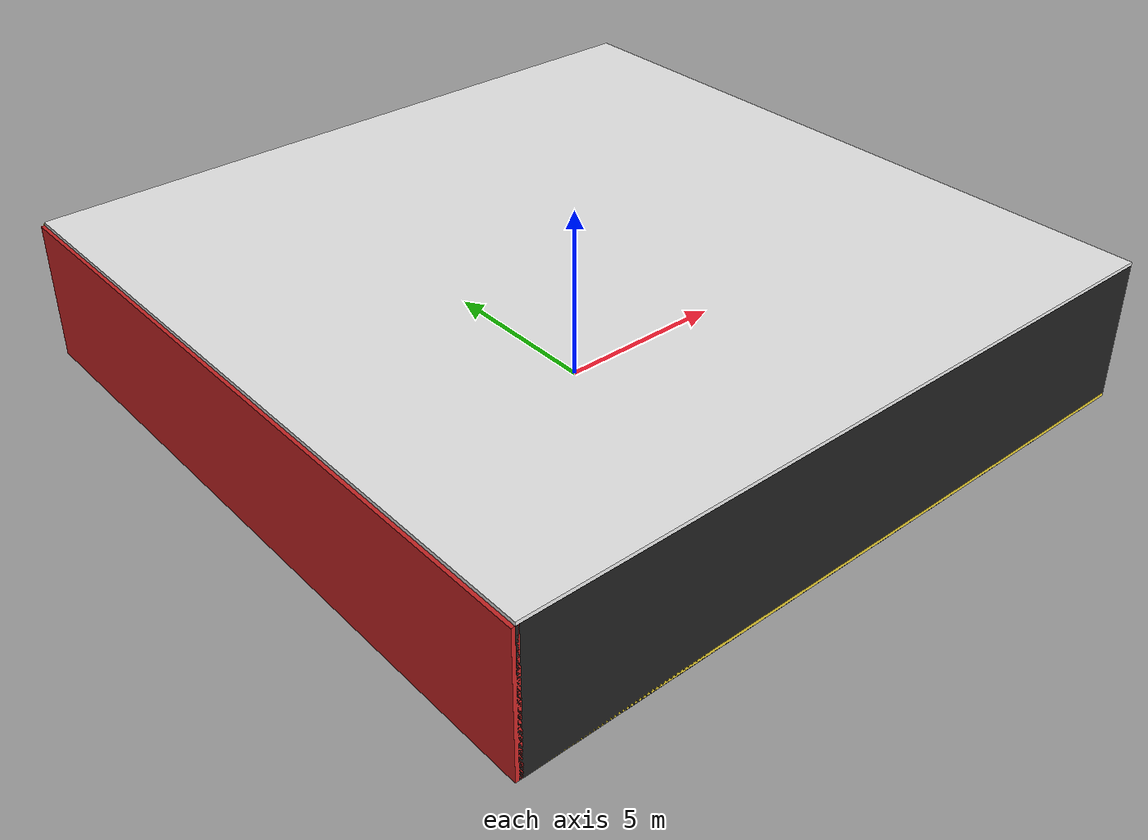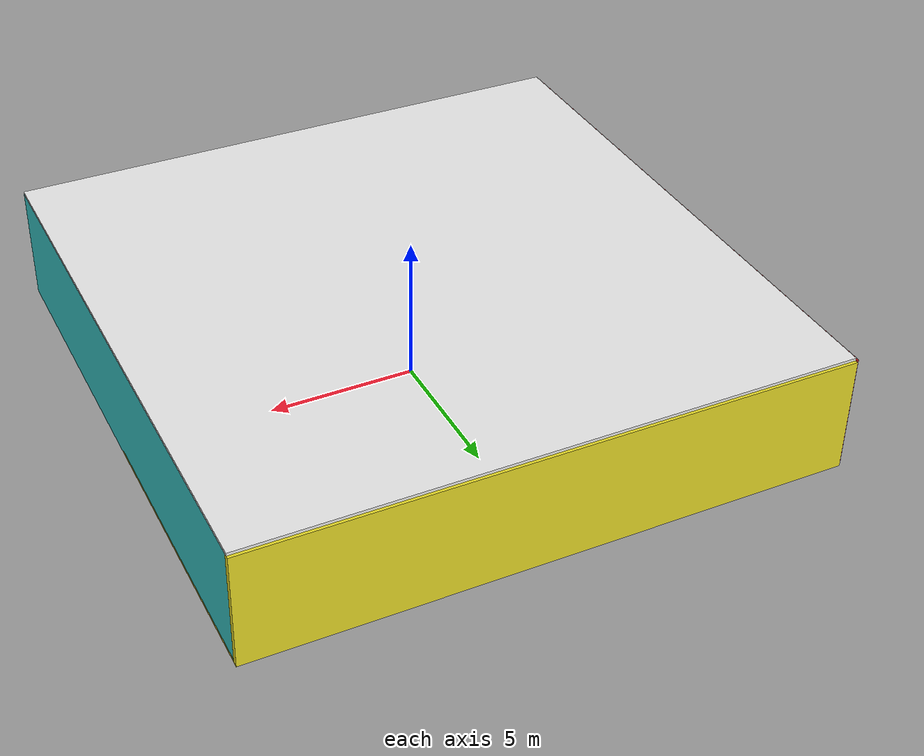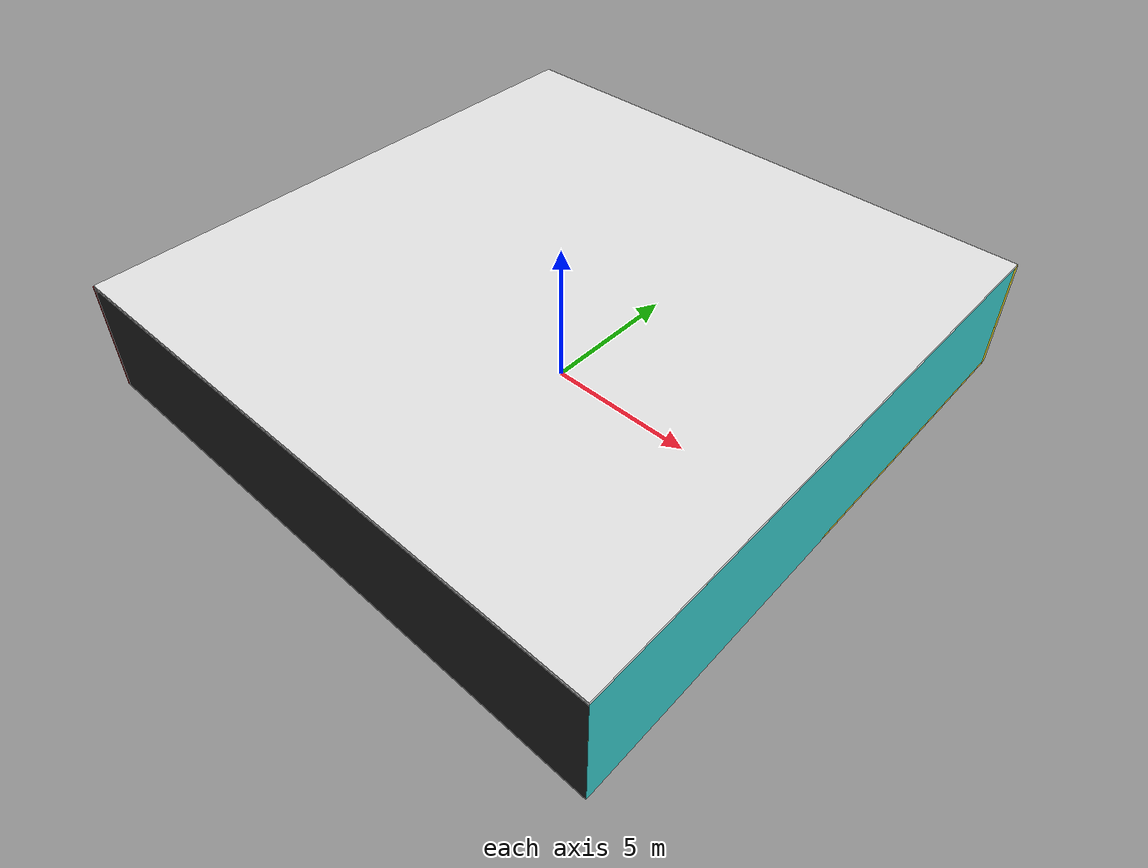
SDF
<sdf version="1.4">
 <world name="default">
  <physics type="ode">
   <max_step_size>0.001</max_step_size>
   <real_time_factor>1</real_time_factor>
   <real_time_update_rate>1000</real_time_update_rate>
   <gravity>0 0 -9.8</gravity>
  </physics>
  <scene><ambient>0.4 0.4 0.4 1</ambient><background>0.7 0.7 0.7 1</background><shadows>1</shadows></scene>
  <model name="Surrounding">
   <static>1</static>
   <link name="Ceiling">
    <collision name="Ceiling_Collision"><geometry><box><size>20 20 0.1</size></box></geometry></collision>
    <visual name="Ceiling_Visual">
     <geometry><box><size>20 20 0.1</size></box></geometry>
     <material>
      <script><uri>file://media/materials/scripts/gazebo.material</uri><name>Gazebo/White</name></script>
     </material>
    </visual>
    <pose>0 0 4.05 0 0 0</pose>
   </link>
   <link name="Wall_South">
    <collision name="Wall_South_Collision">
     <geometry><box><size>20 0 4</size></box></geometry>
     <pose>0 0 2 0 -0 0</pose>
    </collision>
    <visual name="Wall_South_Visual">
     <pose>0 0 2 0 -0 0</pose>
     <geometry><box><size>20 0 4</size></box></geometry>
     <material>
      <script><uri>file://media/materials/scripts/gazebo.material</uri><name>Gazebo/FlatBlack</name></script>
     </material>
    </visual>
    <velocity_decay><linear>0</linear><angular>0</angular></velocity_decay>
    <pose>0 -10 0 0 -0 0</pose>
   </link>
   <link name="Wall_East">
    <collision name="Wall_21_Collision">
     <geometry><box><size>20 0 4</size></box></geometry>
     <pose>0 0 2 0 -0 0</pose>
    </collision>
    <visual name="Wall_21_Visual">
     <pose>0 0 2 0 -0 0</pose>
     <geometry><box><size>20 0 4</size></box></geometry>
     <material>
      <script>
       <uri>file://media/materials/scripts/gazebo.material</uri>
       <name>Gazebo/TurquoiseGlowOutline</name>
      </script>
     </material>
    </visual>
    <velocity_decay><linear>0</linear><angular>0</angular></velocity_decay>
    <pose>10 0 0 0 -0 1.5708</pose>
   </link>
   <link name="Wall_North">
    <collision name="Wall_22_Collision">
     <geometry><box><size>20 0.2 4</size></box></geometry>
     <pose>0 0 2 0 -0 0</pose>
    </collision>
    <visual name="Wall_22_Visual">
     <pose>0 0 2 0 -0 0</pose>
     <geometry><box><size>20 0.2 4</size></box></geometry>
     <material>
      <script><uri>file://media/materials/scripts/gazebo.material</uri><name>Gazebo/YellowGlow</name></script>
     </material>
    </visual>
    <velocity_decay><linear>0</linear><angular>0</angular></velocity_decay>
    <pose>0 10 0 0 -0 0</pose>
   </link>
   <link name="Wall_West">
    <collision name="Wall_23_Collision">
     <geometry><box><size>20 0.2 4</size></box></geometry>
     <pose>0 0 2 0 -0 0</pose>
    </collision>
    <visual name="Wall_23_Visual">
     <pose>0 0 2 0 -0 0</pose>
     <geometry><box><size>20 0.2 4</size></box></geometry>
     <material>
      <script><uri>file://media/materials/scripts/gazebo.material</uri><name>Gazebo/RedGlow</name></script>
     </material>
    </visual>
    <velocity_decay><linear>0</linear><angular>0</angular></velocity_decay>
    <pose>-10 0 0 0 0 -1.5708</pose>
   </link>
   <link name="Ground_link">
    <collision name="collision">
     <pose>0 0 .05 0 -0 0</pose>
     <geometry><box><size>20 20 0.1</size></box></geometry>
    </collision>
    <visual name="visual">
     <pose>0 0 .05 0 -0 0</pose>
     <geometry><box><size>20 20 0.1</size></box></geometry>
     <material>
      <script><uri>file://media/materials/scripts/gazebo.material</uri><name>Gazebo/ZincYellow</name></script>
     </material>
    </visual>
   </link>
   <static>1</static>
  </model>
  <spherical_coordinates>
   <surface_model>EARTH_WGS84</surface_model>
   <latitude_deg>0</latitude_deg>
   <longitude_deg>0</longitude_deg>
   <elevation>0</elevation>
   <heading_deg>0</heading_deg>
  </spherical_coordinates>
  <light name="lightball_0" type="diffuse">
   <diffuse>0.8 0.8 0.8 1</diffuse>
   <specular>0.2 0.2 0.2 1</specular>
   <attenuation>
    <range>100</range>
    <constant>0.7</constant>
    <linear>0.01</linear>
    <quadratic>0.001</quadratic>
   </attenuation>
   <direction>-0.5 0.1 -0.9</direction>
   <pose>4.49807056483 0.0712303950816 1.88487863137 0 0 0</pose>
  </light>
  <light name="lightball_1" type="diffuse">
   <diffuse>0.8 0.8 0.8 1</diffuse>
   <specular>0.2 0.2 0.2 1</specular>
   <attenuation>
    <range>100</range>
    <constant>0.7</constant>
    <linear>0.01</linear>
    <quadratic>0.001</quadratic>
   </attenuation>
   <direction>-0.5 0.1 -0.9</direction>
   <pose>3.9776111495 -2.05365608196 1.7578626716 0 0 0</pose>
  </light>
  <light name="lightball_2" type="diffuse">
   <diffuse>0.8 0.8 0.8 1</diffuse>
   <specular>0.2 0.2 0.2 1</specular>
   <attenuation>
    <range>100</range>
    <constant>0.7</constant>
    <linear>0.01</linear>
    <quadratic>0.001</quadratic>
   </attenuation>
   <direction>-0.5 0.1 -0.9</direction>
   <pose>5.276242772 -2.71075727546 3.76751410948 0 0 0</pose>
  </light>
  <light name="lightball_3" type="diffuse">
   <diffuse>0.8 0.8 0.8 1</diffuse>
   <specular>0.2 0.2 0.2 1</specular>
   <attenuation>
    <range>100</range>
    <constant>0.7</constant>
    <linear>0.01</linear>
    <quadratic>0.001</quadratic>
   </attenuation>
   <direction>-0.5 0.1 -0.9</direction>
   <pose>-5.89469357813 7.13109365602 3.49955959138 0 0 0</pose>
  </light>
  <light name="lightball_4" type="diffuse">
   <diffuse>0.8 0.8 0.8 1</diffuse>
   <specular>0.2 0.2 0.2 1</specular>
   <attenuation>
    <range>100</range>
    <constant>0.7</constant>
    <linear>0.01</linear>
    <quadratic>0.001</quadratic>
   </attenuation>
   <direction>-0.5 0.1 -0.9</direction>
   <pose>-0.237813559318 -9.13213407221 0.927517507428 0 0 0</pose>
  </light>
  <light name="lightball_5" type="diffuse">
   <diffuse>0.8 0.8 0.8 1</diffuse>
   <specular>0.2 0.2 0.2 1</specular>
   <attenuation>
    <range>100</range>
    <constant>0.7</constant>
    <linear>0.01</linear>
    <quadratic>0.001</quadratic>
   </attenuation>
   <direction>-0.5 0.1 -0.9</direction>
   <pose>0.618139636598 -2.6122909379 1.11694311652 0 0 0</pose>
  </light>
  <light name="lightball_6" type="diffuse">
   <diffuse>0.8 0.8 0.8 1</diffuse>
   <specular>0.2 0.2 0.2 1</specular>
   <attenuation>
    <range>100</range>
    <constant>0.7</constant>
    <linear>0.01</linear>
    <quadratic>0.001</quadratic>
   </attenuation>
   <direction>-0.5 0.1 -0.9</direction>
   <pose>-2.17569380815 -0.238397207709 2.77378152938 0 0 0</pose>
  </light>
  <light name="lightball_7" type="diffuse">
   <diffuse>0.8 0.8 0.8 1</diffuse>
   <specular>0.2 0.2 0.2 1</specular>
   <attenuation>
    <range>100</range>
    <constant>0.7</constant>
    <linear>0.01</linear>
    <quadratic>0.001</quadratic>
   </attenuation>
   <direction>-0.5 0.1 -0.9</direction>
   <pose>5.11809745221 -4.93003934467 1.50743106208 0 0 0</pose>
  </light>
  <light name="lightball_8" type="diffuse">
   <diffuse>0.8 0.8 0.8 1</diffuse>
   <specular>0.2 0.2 0.2 1</specular>
   <attenuation>
    <range>100</range>
    <constant>0.7</constant>
    <linear>0.01</linear>
    <quadratic>0.001</quadratic>
   </attenuation>
   <direction>-0.5 0.1 -0.9</direction>
   <pose>-5.35792287567 0.503093882951 3.30206506219 0 0 0</pose>
  </light>
  <light name="lightball_9" type="diffuse">
   <diffuse>0.8 0.8 0.8 1</diffuse>
   <specular>0.2 0.2 0.2 1</specular>
   <attenuation>
    <range>100</range>
    <constant>0.7</constant>
    <linear>0.01</linear>
    <quadratic>0.001</quadratic>
   </attenuation>
   <direction>-0.5 0.1 -0.9</direction>
   <pose>-4.87407655649 9.06611474538 1.21034548328 0 0 0</pose>
  </light>
  <include><uri>model://cabinet</uri><pose>-6.47374409066 -8.50641506659 0 0 0 2.32131577264</pose></include>
  <include><uri>model://table</uri><pose>-8.64085560051 -4.92155519625 0 0 0 0.708705514963</pose></include>
  <include>
   <uri>model://robocup_3Dsim_goal</uri>
   <pose>-8.07904794279 -2.15653318897 0 0 0 2.76059202867</pose>
  </include>
  <include>
   <uri>model://construction_cone</uri>
   <pose>-5.57252817646 -2.17591257025 0 0 0 1.25589094489</pose>
  </include>
  <include>
   <uri>model://construction_cone</uri>
   <pose>-5.44096926731 1.18005241115 0 0 0 1.02994945591</pose>
  </include>
  <include><uri>model://table</uri><pose>-1.89447306183 -3.4089755955 0 0 0 0.980776186446</pose></include>
  <include>
   <uri>model://robocup_3Dsim_goal</uri>
   <pose>1.3865380883 6.91967835708 0 0 0 0.890766286343</pose>
  </include>
  <include>
   <uri>model://robocup_3Dsim_goal</uri>
   <pose>3.82662252359 -5.14568323777 0 0 0 2.90317049193</pose>
  </include>
  <include><uri>model://cabinet</uri><pose>4.80821623718 4.63242681768 0 0 0 0.379401663795</pose></include>
  <include><uri>model://cabinet</uri><pose>8.26604041248 8.20432530475 0 0 0 0.439045129132</pose></include>
 </world>
</sdf>

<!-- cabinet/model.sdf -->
<sdf version="1.5">
  <model name="cabinet">
    <static>true</static>
    <link name="cabinet_bottom_plate">
      <inertial>
        <pose>0 0 -1 0 0 0</pose>
        <inertia>
          <ixx>2.050000</ixx>
          <ixy>0</ixy>
          <ixz>0</ixz>
          <iyy>2.050000</iyy>
          <iyz>0</iyz>
          <izz>2.050000</izz>
        </inertia>
        <mass>25.000000</mass>
      </inertial>
      <collision name="cabinet_bottom_plate_geom">
        <pose>0 0 0.010000 0 0 0</pose>
        <geometry>
          <box>
            <size>0.450000 0.450000 0.020000</size>
          </box>
        </geometry>
      </collision>
      <visual name="cabinet_bottom_plate_geom_visual">
        <pose>0 0 0.010000 0 0 0</pose>
        <geometry>
          <box>
            <size>0.450000 0.450000 0.020000</size>
          </box>
        </geometry>
        <material>
          <script>
            <uri>model://media/materials/scripts/gazebo.material</uri>
            <name>Gazebo/Wood</name>
          </script>
        </material>
      </visual>
      <collision name="cabinet_bottom_plate_geom_cabinet_back_plate">
        <pose>0.235000 0 0.510000 0 0 0</pose>
        <geometry>
          <box>
            <size>0.020000 0.450000 1.020000</size>
          </box>
        </geometry>
      </collision>
      <visual name="cabinet_bottom_plate_geom_cabinet_back_plate_visual">
        <pose>0.235000 0 0.510000 0 0 0</pose>
        <geometry>
          <box>
            <size>0.020000 0.450000 1.020000</size>
          </box>
        </geometry>
        <material>
          <script>
            <uri>model://media/materials/scripts/gazebo.material</uri>
            <name>Gazebo/Wood</name>
          </script>
        </material>
      </visual>
      <collision name="cabinet_bottom_plate_geom_cabinet_left_plate">
        <pose>0 0.235000 0.510000 0 0 0</pose>
        <geometry>
          <box>
            <size>0.450000 0.020000 1.020000</size>
          </box>
        </geometry>
      </collision>
      <visual name="cabinet_bottom_plate_geom_cabinet_left_plate_visual">
        <pose>0 0.235000 0.510000 0 0 0</pose>
        <geometry>
          <box>
            <size>0.450000 0.020000 1.020000</size>
          </box>
        </geometry>
        <material>
          <script>
            <uri>model://media/materials/scripts/gazebo.material</uri>
            <name>Gazebo/Wood</name>
          </script>
        </material>
      </visual>
      <collision name="cabinet_bottom_plate_geom_cabinet_middle_plate">
        <pose>0 0 0.510000 0 0 0</pose>
        <geometry>
          <box>
            <size>0.450000 0.450000 0.020000</size>
          </box>
        </geometry>
      </collision>
      <visual name="cabinet_bottom_plate_geom_cabinet_middle_plate_visual">
        <pose>0 0 0.510000 0 0 0</pose>
        <geometry>
          <box>
            <size>0.450000 0.450000 0.020000</size>
          </box>
        </geometry>
        <material>
          <script>
            <uri>model://media/materials/scripts/gazebo.material</uri>
            <name>Gazebo/Wood</name>
          </script>
        </material>
      </visual>
      <collision name="cabinet_bottom_plate_geom_cabinet_right_plate">
        <pose>0 -0.235000 0.510000 0 0 0</pose>
        <geometry>
          <box>
            <size>0.450000 0.020000 1.020000</size>
          </box>
        </geometry>
      </collision>
      <visual name="cabinet_bottom_plate_geom_cabinet_right_plate_visual">
        <pose>0 -0.235000 0.510000 0 0 0</pose>
        <geometry>
          <box>
            <size>0.450000 0.020000 1.020000</size>
          </box>
        </geometry>
        <material>
          <script>
            <uri>model://media/materials/scripts/gazebo.material</uri>
            <name>Gazebo/Wood</name>
          </script>
        </material>
      </visual>
      <collision name="cabinet_bottom_plate_geom_cabinet_top_plate">
        <pose>0 0 1.010000 0 0 0</pose>
        <geometry>
          <box>
            <size>0.450000 0.450000 0.020000</size>
          </box>
        </geometry>
      </collision>
      <visual name="cabinet_bottom_plate_geom_cabinet_top_plate_visual">
        <pose>0 0 1.010000 0 0 0</pose>
        <geometry>
          <box>
            <size>0.450000 0.450000 0.020000</size>
          </box>
        </geometry>
        <material>
          <script>
            <uri>model://media/materials/scripts/gazebo.material</uri>
            <name>Gazebo/Wood</name>
          </script>
        </material>
      </visual>
    </link>
  </model>
</sdf>

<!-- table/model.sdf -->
<sdf version="1.5">
  <model name="table">
    <static>true</static>
    <link name="link">
      <collision name="surface">
        <pose>0 0 1.0 0 0 0</pose>
        <geometry>
          <box>
            <size>1.5 0.8 0.03</size>
          </box>
        </geometry>
        <surface>
          <friction>
            <ode>
              <mu>0.6</mu>
              <mu2>0.6</mu2>
            </ode>
          </friction>
        </surface>
      </collision>
      <visual name="visual1">
        <pose>0 0 1.0 0 0 0</pose>
        <geometry>
          <box>
            <size>1.5 0.8 0.03</size>
          </box>
        </geometry>
        <material>
          <script>
            <uri>model://media/materials/scripts/gazebo.material</uri>
            <name>Gazebo/Wood</name>
          </script>
        </material>
      </visual>
      <collision name="front_left_leg">
        <pose>0.68 0.38 0.5 0 0 0</pose>
        <geometry>
          <cylinder>
            <radius>0.02</radius>
            <length>1.0</length>
          </cylinder>
        </geometry>
      </collision>
      <visual name="front_left_leg">
        <pose>0.68 0.38 0.5 0 0 0</pose>
        <geometry>
          <cylinder>
            <radius>0.02</radius>
            <length>1.0</length>
          </cylinder>
        </geometry>
        <material>
          <script>
            <uri>model://media/materials/scripts/gazebo.material</uri>
            <name>Gazebo/Grey</name>
          </script>
        </material>
      </visual>
      <collision name="front_right_leg">
        <pose>0.68 -0.38 0.5 0 0 0</pose>
        <geometry>
          <cylinder>
            <radius>0.02</radius>
            <length>1.0</length>
          </cylinder>
        </geometry>
      </collision>
      <visual name="front_right_leg">
        <pose>0.68 -0.38 0.5 0 0 0</pose>
        <geometry>
          <cylinder>
            <radius>0.02</radius>
            <length>1.0</length>
          </cylinder>
        </geometry>
        <material>
          <script>
            <uri>model://media/materials/scripts/gazebo.material</uri>
            <name>Gazebo/Grey</name>
          </script>
        </material>
      </visual>
      <collision name="back_right_leg">
        <pose>-0.68 -0.38 0.5 0 0 0</pose>
        <geometry>
          <cylinder>
            <radius>0.02</radius>
            <length>1.0</length>
          </cylinder>
        </geometry>
      </collision>
      <visual name="back_right_leg">
        <pose>-0.68 -0.38 0.5 0 0 0</pose>
        <geometry>
          <cylinder>
            <radius>0.02</radius>
            <length>1.0</length>
          </cylinder>
        </geometry>
        <material>
          <script>
            <uri>model://media/materials/scripts/gazebo.material</uri>
            <name>Gazebo/Grey</name>
          </script>
        </material>
      </visual>
      <collision name="back_left_leg">
        <pose>-0.68 0.38 0.5 0 0 0</pose>
        <geometry>
          <cylinder>
            <radius>0.02</radius>
            <length>1.0</length>
          </cylinder>
        </geometry>
      </collision>
      <visual name="back_left_leg">
        <pose>-0.68 0.38 0.5 0 0 0</pose>
        <geometry>
          <cylinder>
            <radius>0.02</radius>
            <length>1.0</length>
          </cylinder>
        </geometry>
        <material>
          <script>
            <uri>model://media/materials/scripts/gazebo.material</uri>
            <name>Gazebo/Grey</name>
          </script>
        </material>
      </visual>
    </link>
  </model>
</sdf>

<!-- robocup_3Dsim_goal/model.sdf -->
<sdf version="1.5">
  <model name="robocup_3d_goal">
    <static>true</static>
    <link name="left_post">
      <pose>0 1.05 0.45 0 0 0</pose>
      <collision name="collision">
        <geometry>
          <cylinder>
            <radius>0.05</radius>
            <length>0.9</length>
          </cylinder>
        </geometry>
      </collision>
      <visual name="visual">
        <geometry>
          <cylinder>
            <radius>0.05</radius>
            <length>0.9</length>
          </cylinder>
        </geometry>
        <material>
          <script>
            <uri>file://media/materials/scripts/gazebo.material</uri>
            <name>Gazebo/ZincYellow</name>
          </script>
        </material>
      </visual>
    </link>
    <link name="left_support_horiz_lower">
      <pose>0.30 1.05 0.01 0 0 0</pose>
      <collision name="collision">
        <geometry>
          <box>
            <size>0.50 0.02 0.02</size>
          </box>
        </geometry>
      </collision>
      <visual name="visual">
        <geometry>
          <box>
            <size>0.50 0.02 0.02</size>
          </box>
        </geometry>
        <material>
          <script>
            <uri>file://media/materials/scripts/gazebo.material</uri>
            <name>Gazebo/White</name>
          </script>
        </material>
      </visual>
    </link>
    <link name="left_support_horiz_upper">
      <pose>0.30 1.05 0.79 0 0 0</pose>
      <collision name="collision">
        <geometry>
          <box>
            <size>0.50 0.02 0.02</size>
          </box>
        </geometry>
      </collision>
      <visual name="visual">
        <geometry>
          <box>
            <size>0.50 0.02 0.02</size>
          </box>
        </geometry>
        <material>
          <script>
            <uri>file://media/materials/scripts/gazebo.material</uri>
            <name>Gazebo/White</name>
          </script>
        </material>
      </visual>
    </link>
    <link name="left_support_vertical">
      <pose>0.56 1.05 0.4 0 1.5708 0</pose>
      <collision name="collision">
        <geometry>
          <box>
            <size>0.80 0.02 0.02</size>
          </box>
        </geometry>
      </collision>
      <visual name="visual">
        <geometry>
          <box>
            <size>0.80 0.02 0.02</size>
          </box>
        </geometry>
        <material>
          <script>
            <uri>file://media/materials/scripts/gazebo.material</uri>
            <name>Gazebo/White</name>
          </script>
        </material>
      </visual>
    </link>
    <link name="right_support_horiz_lower">
      <pose>0.30 -1.05 0.01 0 0 0</pose>
      <collision name="collision">
        <geometry>
          <box>
            <size>0.50 0.02 0.02</size>
          </box>
        </geometry>
      </collision>
      <visual name="visual">
        <geometry>
          <box>
            <size>0.50 0.02 0.02</size>
          </box>
        </geometry>
        <material>
          <script>
            <uri>file://media/materials/scripts/gazebo.material</uri>
            <name>Gazebo/White</name>
          </script>
        </material>
      </visual>
    </link>
    <link name="right_support_horiz_upper">
      <pose>0.30 -1.05 0.79 0 0 0</pose>
      <collision name="collision">
        <geometry>
          <box>
            <size>0.50 0.02 0.02</size>
          </box>
        </geometry>
      </collision>
      <visual name="visual">
        <geometry>
          <box>
            <size>0.50 0.02 0.02</size>
          </box>
        </geometry>
        <material>
          <script>
            <uri>file://media/materials/scripts/gazebo.material</uri>
            <name>Gazebo/White</name>
          </script>
        </material>
      </visual>
    </link>
    <link name="right_support_vertical">
      <pose>0.56 -1.05 0.4 0 1.5708 0</pose>
      <collision name="collision">
        <geometry>
          <box>
            <size>0.80 0.02 0.02</size>
          </box>
        </geometry>
      </collision>
      <visual name="visual">
        <geometry>
          <box>
            <size>0.80 0.02 0.02</size>
          </box>
        </geometry>
        <material>
          <script>
            <uri>file://media/materials/scripts/gazebo.material</uri>
            <name>Gazebo/White</name>
          </script>
        </material>
      </visual>
    </link>
    <link name="center_support_horiz_lower">
      <pose>0.56 0 0.01 0 1.5708 0</pose>
      <collision name="collision">
        <geometry>
          <box>
            <size>0.02 2.08 0.02</size>
          </box>
        </geometry>
      </collision>
      <visual name="visual">
        <geometry>
          <box>
            <size>0.02 2.08 0.02</size>
          </box>
        </geometry>
        <material>
          <script>
            <uri>file://media/materials/scripts/gazebo.material</uri>
            <name>Gazebo/White</name>
          </script>
        </material>
      </visual>
    </link>
    <link name="center_support_horiz_upper">
      <pose>0.56 0 0.79 0 1.5708 0</pose>
      <collision name="collision">
        <geometry>
          <box>
            <size>0.02 2.08 0.02</size>
          </box>
        </geometry>
      </collision>
      <visual name="visual">
        <geometry>
          <box>
            <size>0.02 2.08 0.02</size>
          </box>
        </geometry>
        <material>
          <script>
            <uri>file://media/materials/scripts/gazebo.material</uri>
            <name>Gazebo/White</name>
          </script>
        </material>
      </visual>
    </link>
    <link name="right_post">
      <pose>0 -1.05 0.45 0 0 0</pose>
      <collision name="collision">
        <geometry>
          <cylinder>
            <radius>0.05</radius>
            <length>0.9</length>
          </cylinder>
        </geometry>
      </collision>
      <visual name="visual">
        <geometry>
          <cylinder>
            <radius>0.05</radius>
            <length>0.9</length>
          </cylinder>
        </geometry>
        <material>
          <script>
            <uri>file://media/materials/scripts/gazebo.material</uri>
            <name>Gazebo/ZincYellow</name>
          </script>
        </material>
      </visual>
    </link>
    <link name="crossbar">
      <pose>0 0 0.85 1.57 1.57 0</pose>
      <collision name="collision">
        <geometry>
          <cylinder>
            <radius>0.05</radius>
            <length>2.0</length>
          </cylinder>
        </geometry>
      </collision>
      <visual name="visual">
        <geometry>
          <cylinder>
            <radius>0.05</radius>
            <length>2.0</length>
          </cylinder>
        </geometry>
        <material>
          <script>
            <uri>file://media/materials/scripts/gazebo.material</uri>
            <name>Gazebo/ZincYellow</name>
          </script>
        </material>
      </visual>
    </link>
    <link name="center_net">
      <pose>0.56 0 0.40 0 0 0</pose>
      <collision name="collision">
        <geometry>
          <box>
            <size>0.01 2.1 0.80</size>
          </box>
        </geometry>
      </collision>
      <visual name="visual">
        <geometry>
          <box>
            <size>0.01 2.1 0.80</size>
          </box>
        </geometry>
        <material>
          <script>
            <uri>model://../model_source/models/robocup09_spl_field/materials/scripts/</uri>
            <uri>model://../model_source/models/robocup09_spl_field/materials/textures/</uri>
            <name>RoboCup/Net</name>
          </script>
        </material>
      </visual>
    </link>
    <link name="left_net">
      <pose>0.30 1.05 0.40 0 0 0</pose>
      <collision name="collision">
        <geometry>
          <box>
            <size>0.50 0.01 0.76</size>
          </box>
        </geometry>
      </collision>
      <visual name="visual">
        <geometry>
          <box>
            <size>0.50 0.01 0.76</size>
          </box>
        </geometry>
        <material>
          <script>
            <uri>model://../model_source/models/robocup09_spl_field/materials/scripts/</uri>
            <uri>model://../model_source/models/robocup09_spl_field/materials/textures/</uri>
            <name>RoboCup/Net</name>
          </script>
        </material>
      </visual>
    </link>
    <link name="right_net">
      <pose>0.30 -1.05 0.40 0 0 0</pose>
      <collision name="collision">
        <geometry>
          <box>
            <size>0.50 0.01 0.76</size>
          </box>
        </geometry>
      </collision>
      <visual name="visual">
        <geometry>
          <box>
            <size>0.50 0.01 0.76</size>
          </box>
        </geometry>
        <material>
          <script>
            <uri>model://../model_source/models/robocup09_spl_field/materials/scripts/</uri>
            <uri>model://../model_source/models/robocup09_spl_field/materials/textures/</uri>
            <name>RoboCup/Net</name>
          </script>
        </material>
      </visual>
    </link>
  </model>
</sdf>

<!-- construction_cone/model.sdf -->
<sdf version="1.5">
  <model name="Construction Cone">
    <link name="link">
      <collision name="collision">
        <geometry>
          <mesh>
            <scale>10 10 10</scale>
            <uri>file://isr-testbed/construction_cone/meshes/construction_cone.dae</uri>
          </mesh>
        </geometry>
      </collision>
      <visual name="visual">
        <geometry>
          <mesh>
            <scale>10 10 10</scale>
            <uri>file://isr-testbed/construction_cone/meshes/construction_cone.dae</uri>
          </mesh>
        </geometry>
      </visual>
    </link>
  </model>
</sdf>
